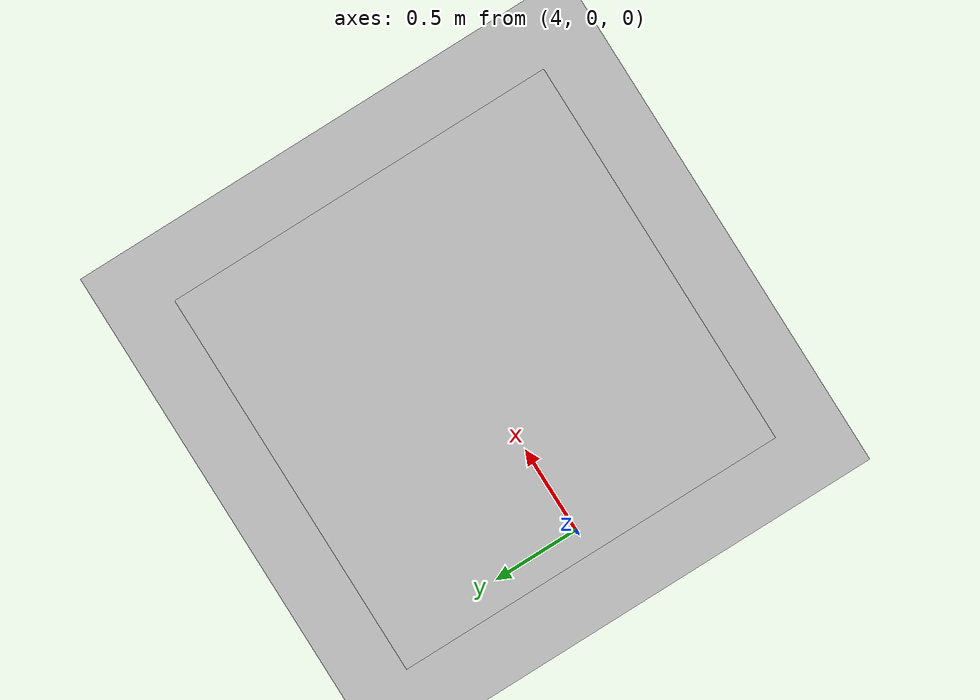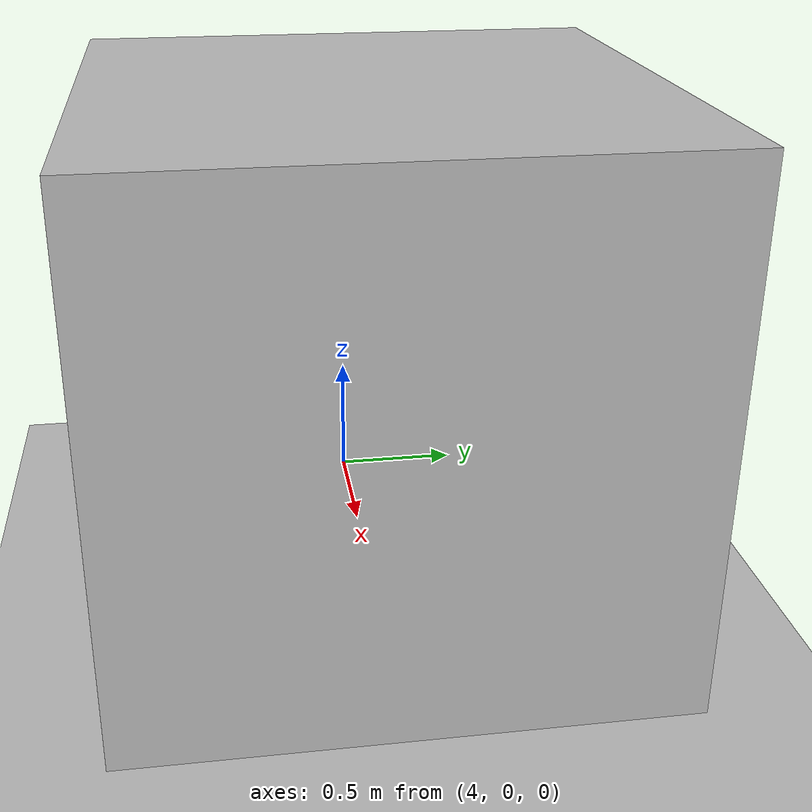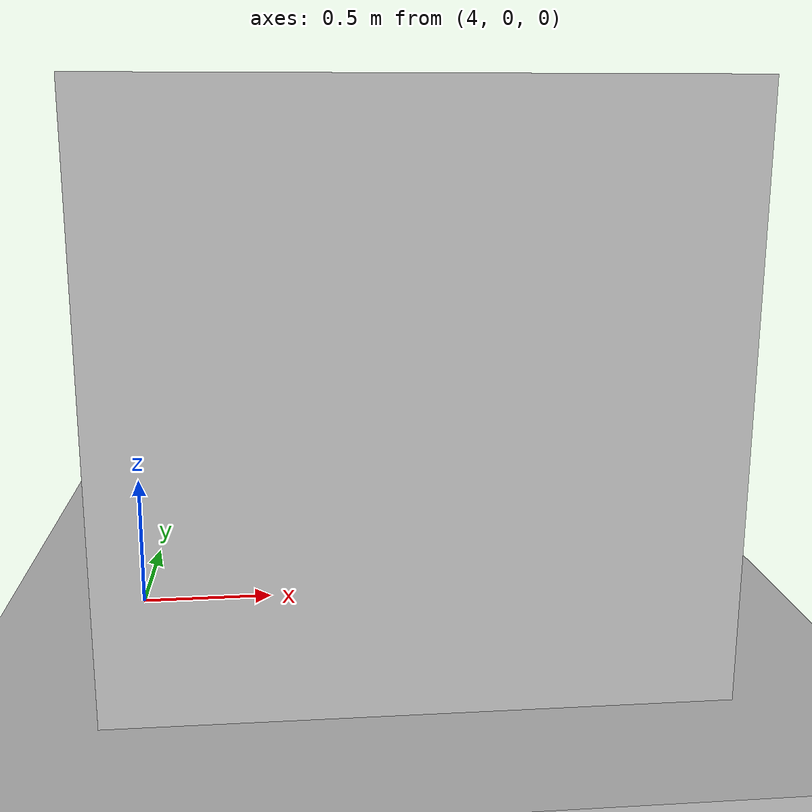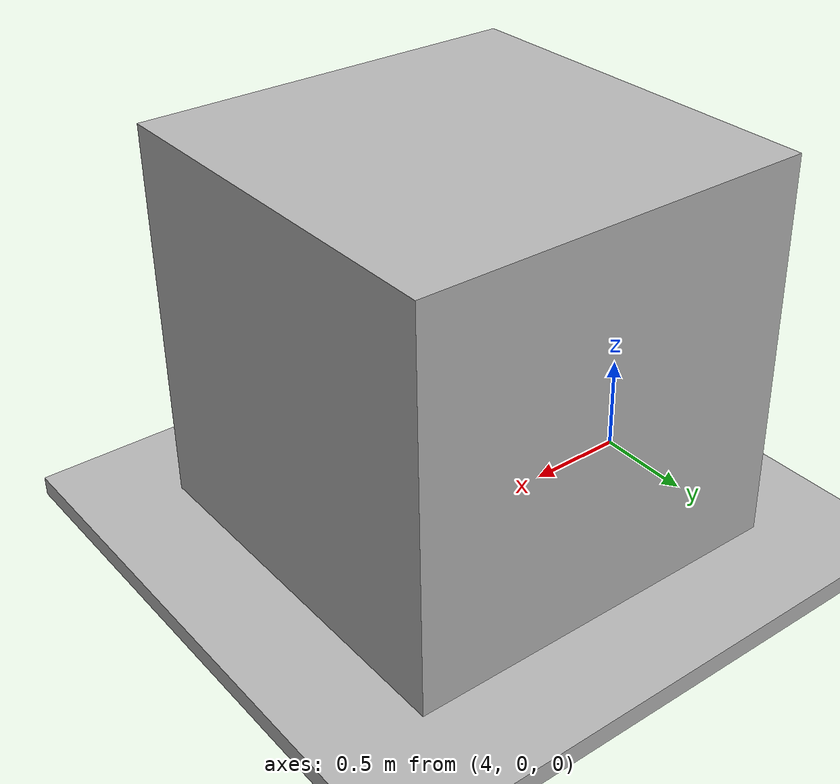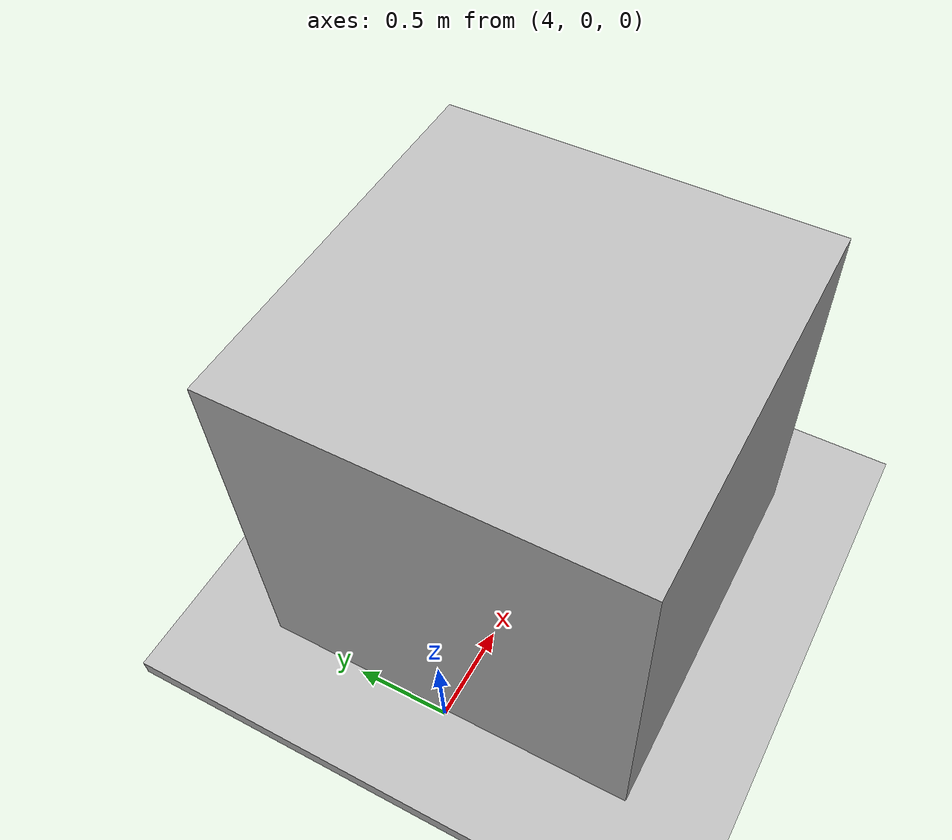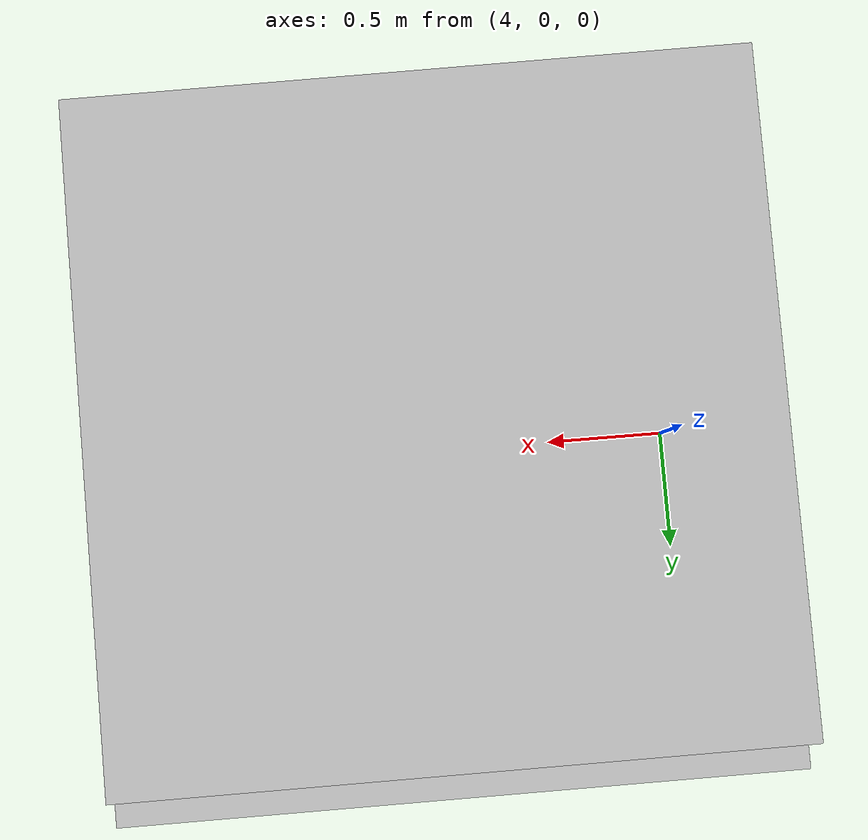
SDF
<?xml version="1.0" ?>
<sdf version="1.9">

  <world name="basic_world">

    <gravity>0 0 -9.81</gravity>

    <light name="sun" type="directional">
      <pose>0 0 10 0 0 0</pose>
      <direction>-0.5 0.5 -1</direction>
    </light>

    <model name="ground">
      <static>true</static>

      <link name="ground_link">

        <collision name="ground_collision">
          <geometry>
            <box>
              <size>100 100 0.1</size>
            </box>
          </geometry>
        </collision>

        <visual name="ground_visual">
          <geometry>
            <box>
              <size>100 100 0.1</size>
            </box>
          </geometry>
        </visual>

      </link>
    </model>

    <model name="obstacle">
      <static>true</static>

      <pose>5 0 1 0 0 0</pose>

      <link name="obstacle_link">

        <collision name="collision">
          <geometry>
            <box>
              <size>2 2 2</size>
            </box>
          </geometry>
        </collision>

        <visual name="visual">
          <geometry>
            <box>
              <size>2 2 2</size>
            </box>
          </geometry>
        </visual>

      </link>
    </model>

  </world>

</sdf>
